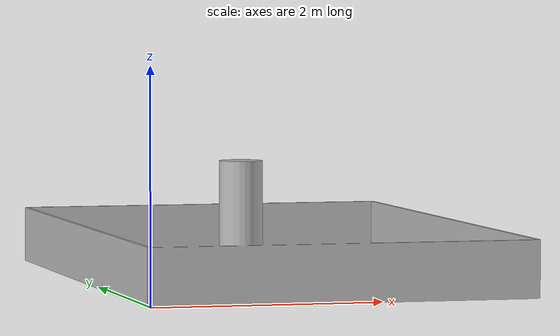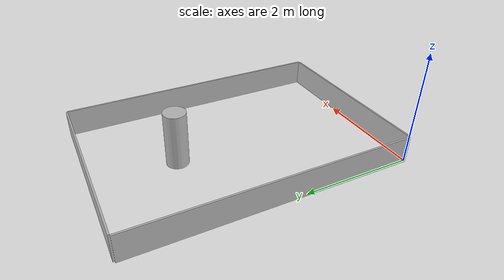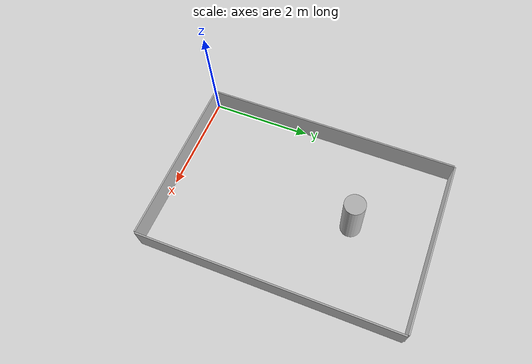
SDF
<?xml version='1.0'?>
<sdf version="1.4">
<model name="field">
  <pose>0 0 0.0 0 0 0</pose>
<link name="link">
 <inertial>
        <mass>1.0</mass>
        <inertia>
          <ixx>0.083</ixx>
          <ixy>0.0</ixy>
          <ixz>0.0</ixz>
          <iyy>0.083</iyy>
          <iyz>0.0</iyz>
          <izz>0.083</izz>
        </inertia>
      </inertial>
<collision name="collision">
        <geometry>
          <mesh>
            <uri>model://field/field.stl</uri>
          </mesh>
        </geometry>
      </collision>
      <visual name="visual">
        <geometry>
          <mesh>
            <uri>model://field/field.stl</uri>
          </mesh>
        </geometry>
      </visual>
</link>
  </model>
</sdf>
